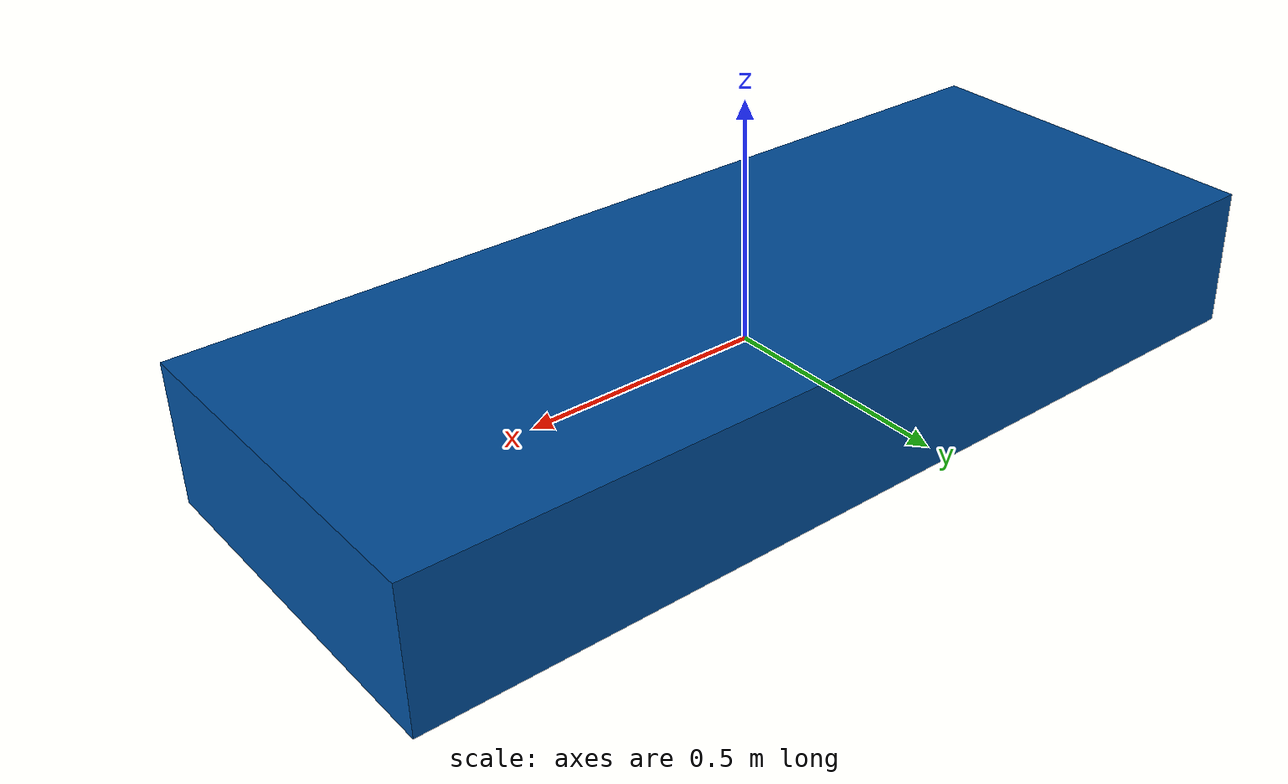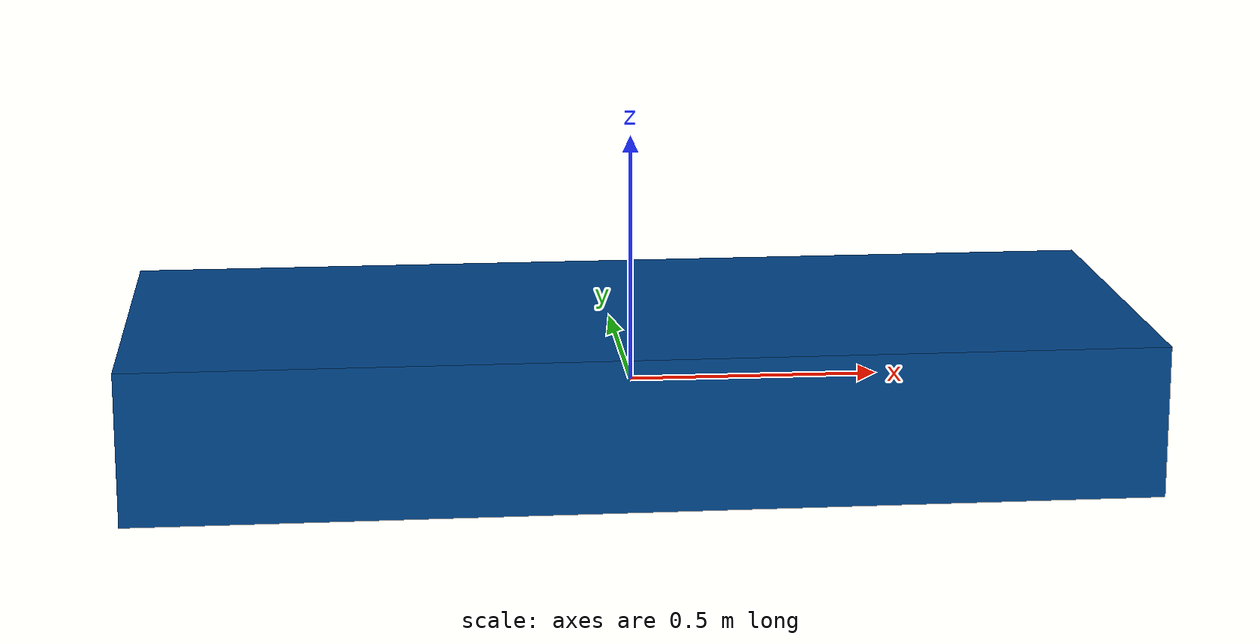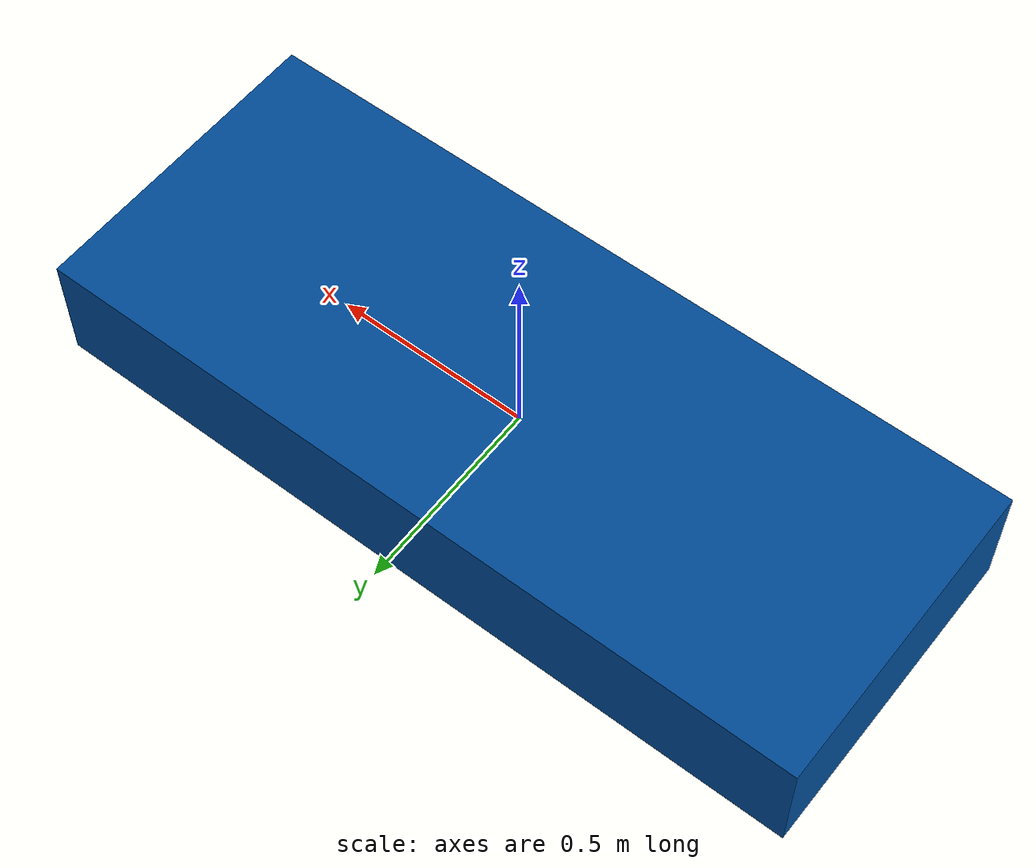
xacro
<?xml version="1.0"?>
<robot xmlns:xacro="http://ros.org/wiki/xacro" name="vessel_prism">
  <!-- prism dims -->
  <xacro:property name="L" value="2.0"/>   <!-- length -->
  <xacro:property name="W" value="0.8"/>   <!-- beam -->
  <xacro:property name="H" value="0.3"/>   <!-- height -->
  <xacro:property name="mass" value="500.0"/>
  <!-- inertial of solid box about center -->
  <xacro:property name="ixx" value="${mass*(H*H+W*W)/12.0}"/>
  <xacro:property name="iyy" value="${mass*(L*L+H*H)/12.0}"/>
  <xacro:property name="izz" value="${mass*(L*L+W*W)/12.0}"/>

  <link name="base_link">
    <!-- VISUAL -->
    <visual>
      <origin xyz="0 0 0" rpy="0 0 0"/>

      <geometry>
        <box size="${L} ${W} ${H}"/>
      </geometry>
      <material name="vessel_blue">
        <color rgba="0.0 0.3 0.6 1.0"/>
      </material>
    </visual>
    <!-- COLLISION -->
    <collision>
      <origin xyz="0 0 0" rpy="0 0 0"/>
      <geometry>
        <box size="${L} ${W} ${H}"/>
      </geometry>
    </collision>
    <!-- INERTIAL -->
    <inertial>
      <origin xyz="0 0 0" rpy="0 0 0"/>
      <mass value="${mass}"/>
      <inertia
        ixx="${ixx}" ixy="0.0" ixz="0.0"
        iyy="${iyy}" iyz="0.0"
        izz="${izz}"/>
    </inertial>
  </link>
</robot>
